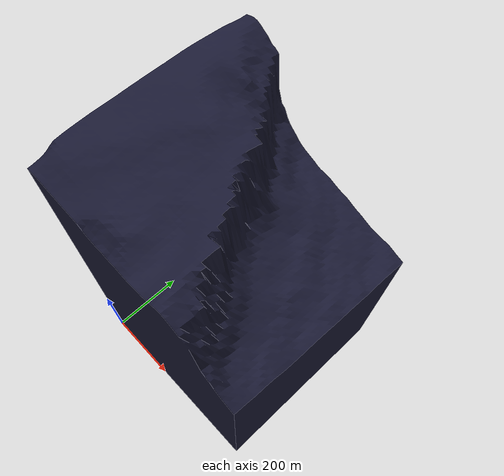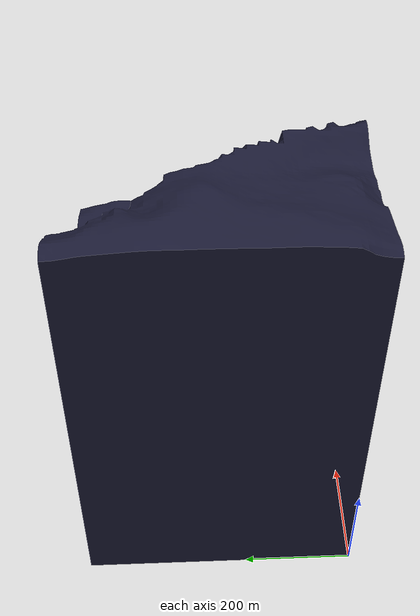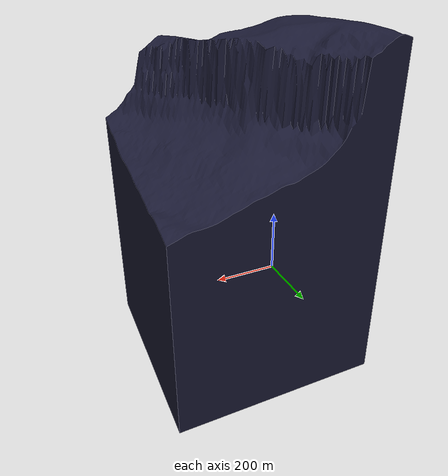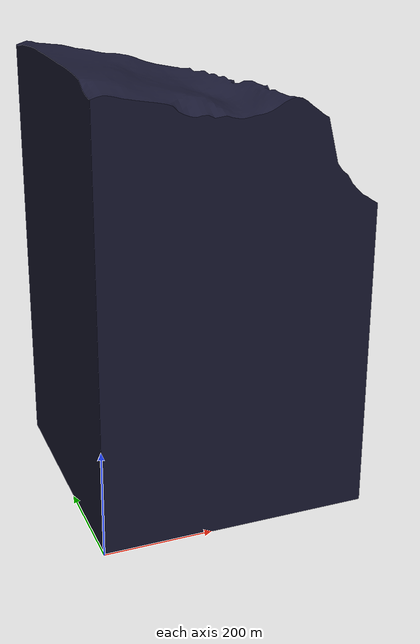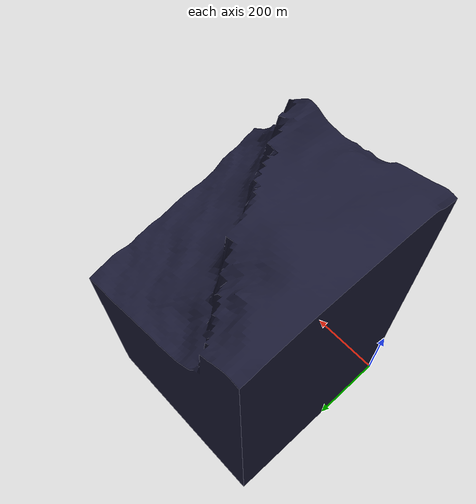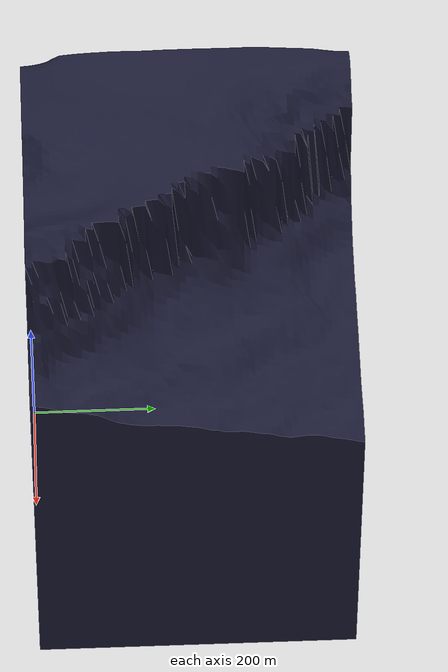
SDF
<?xml version="1.0"?>
<sdf version='1.8'>
  <world name="large_demo">
    <!-- Basic world setup  -->
    <plugin name='ignition::gazebo::systems::Physics' filename='ignition-gazebo-physics-system' />
    <plugin name='ignition::gazebo::systems::UserCommands'
      filename='ignition-gazebo-user-commands-system' />
    <plugin name='ignition::gazebo::systems::SceneBroadcaster'
      filename='ignition-gazebo-scene-broadcaster-system' />
    <plugin name='ignition::gazebo::systems::Contact' filename='ignition-gazebo-contact-system' />
    <light name="sun" type="directional">
      <cast_shadows>0</cast_shadows>
      <pose>0 0 100 0 -0 0</pose>
      <diffuse>0.8 0.8 0.8 1</diffuse>
      <specular>0.8 0.8 0.8 1</specular>
      <direction>-0.5 0.1 -0.9</direction>
      <intensity>5</intensity>
    </light>
    <gravity>0 0 -9.81</gravity>
    <magnetic_field>6e-06 2.3e-05 -4.2e-05</magnetic_field>
    <atmosphere type="adiabatic" />
    <physics name="default_physics" type="ignored">
      <max_step_size>0.01</max_step_size>
      <real_time_factor>1</real_time_factor>
      <real_time_update_rate>100</real_time_update_rate>
    </physics>
    <scene>
      <ambient>1.0 1.0 1.0 1</ambient>
      <background>0.6 0.8 1.0 1</background>
      <shadows>0</shadows>
      <grid>0</grid>
    </scene>

    <!-- Initialise spherical coordinates somewhere -->
    <spherical_coordinates>
      <latitude_deg>0.0</latitude_deg>
      <longitude_deg>0.0</longitude_deg>
      <elevation>10.0</elevation>
      <heading_deg>0</heading_deg>
      <surface_model>EARTH_WGS84</surface_model>
    </spherical_coordinates>

    <!-- Large ground planes with forest floor texture -->

    <!-- Forest wall -->

    <!-- Oak trees -->

    <!-- Platypus -->
    <include>
      <uri>
        file://models/katoomba
      </uri>
    </include>
  </world>
</sdf>

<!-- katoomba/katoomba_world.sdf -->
<sdf version="1.8">
  <model name="tile_0_0">
    <pose>0 0 0 0 0 0</pose>
    <static>true</static>
    <link name="body">
      <visual name="visual">
        <material> <!-- Wheel material -->
          <ambient>0.1 0.1 0.1 1</ambient>
          <diffuse>0.1 0.1 0.2 1</diffuse>
          <specular>0 0 0 0</specular>
          <emissive>0 0 0 1</emissive>
        </material> <!-- End wheel material -->
        <geometry>
          <mesh>
            <uri>file://models/katoomba/model.dae</uri>
          </mesh>
        </geometry>
      </visual>
      <collision name="collision">
        <geometry>
          <mesh>
            <uri>file://models/katoomba/model.dae</uri>
          </mesh>
        </geometry>
      </collision>
    </link>
  </model>
</sdf>
